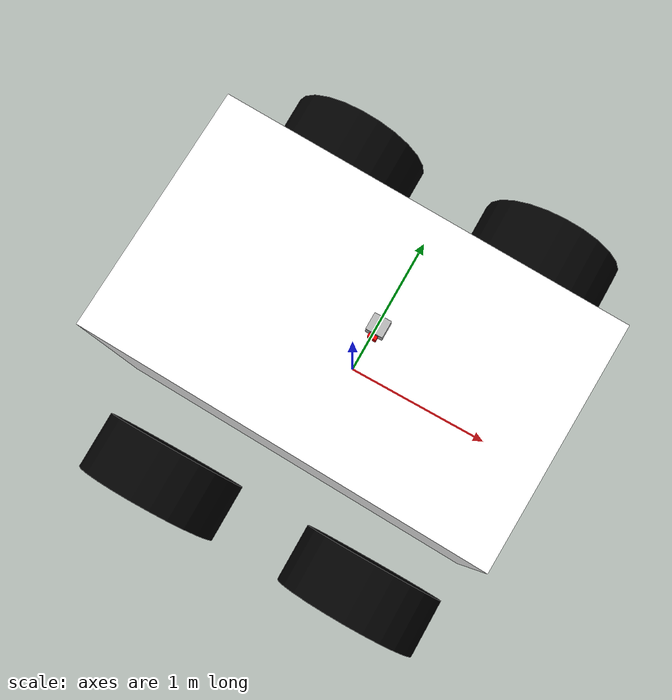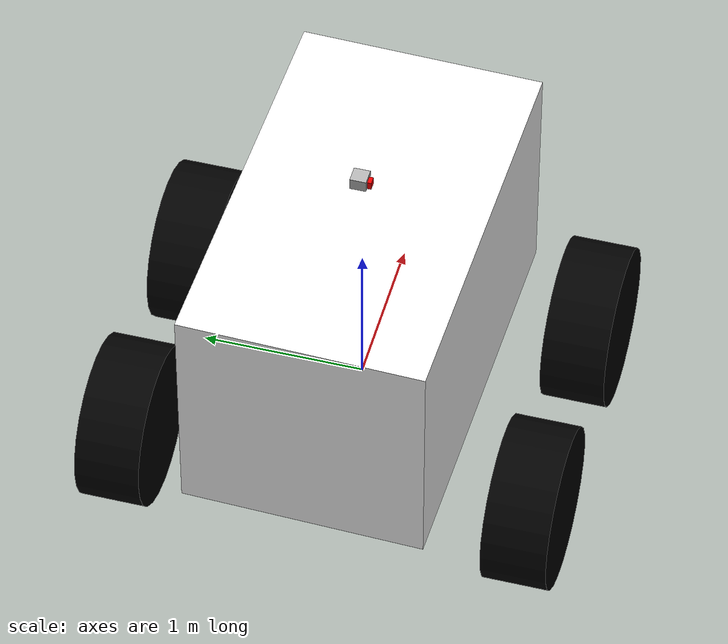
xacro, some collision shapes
<?xml version="1.0"?>

<robot xmlns:xacro="http://www.ros.org/wiki/xacro"
 	xmlns:sensor="http://playerstage.sourceforge.net/gazebo/xmlschema/#sensor"
    	xmlns:controller="http://playerstage.sourceforge.net/gazebo/xmlschema/#controller"
    	xmlns:interface="http://playerstage.sourceforge.net/gazebo/xmlschema/#interface"
	name="robot1_xacro">

	<xacro:property name="length_wheel" value="0.4" />
	<xacro:property name="radius_wheel" value="0.5" />
	<xacro:property name="camera_link" value="0.05" />
	<xacro:macro name="default_inertial" params="mass">  <!--mass how much ?-->
               <inertial>
                       <mass value="${mass}" />
                       <inertia ixx="1.0" ixy="0.0" ixz="0.0"
                                iyy="1.0" iyz="0.0"
                                izz="1.0" />
               </inertial>
	</xacro:macro>

	<link name="base_footprint">
   		<visual>
			<geometry>
      				<box size="0.001 0.001 0.001"/>
     			</geometry>
			<origin rpy="0 0 0" xyz="0 0 0"/>
   		</visual>
		<xacro:default_inertial mass="0.0001"/>
 	</link>
 	<xacro:include filename="$(find robot1_description)/urdf/robot.gazebo" />

	<gazebo reference="base_footprint">
		<material>Gazebo/Green</material>
		<turnGravityOff>false</turnGravityOff>
	</gazebo>

	<joint name="base_footprint_joint" type="fixed">
		<origin xyz="0 0 0" />
		<parent link="base_footprint" />
		<child link="base_link" />
	</joint>

	<link name="base_link">
   		<visual>
			<geometry>
      				<box size="1.5 2.5 1.5"/>
     			</geometry>
			<origin rpy="0 0 1.54" xyz="0 0 0.75"/>  <!--the wheel height? origin be the center of down face-->
			<material name="white">
				<color rgba="1 1 1 1"/>
			</material>
   		</visual>
		<collision>
			<geometry>
       				<box size="1.5 2.5 1.5"/>
			</geometry>
		</collision>
		<xacro:default_inertial mass="10"/> <!--nearly 1000 times-->
 	</link>

 	<link name="wheel_1">
   		<visual>
     			<geometry>
       				<cylinder length="${length_wheel}" radius="${radius_wheel}"/>
     			</geometry>
			<origin rpy="0 0 0" xyz="0 0 0"/>
   			<material name="black">
				<color rgba="0 0 0 1"/>
			</material>
		</visual>
		<collision>
			<geometry>
       				<cylinder length="${length_wheel}" radius="${radius_wheel}"/>
			</geometry>
		</collision>
		<xacro:default_inertial mass="1"/>  <!--nearly 8000 heavier-->
 	</link>

 	<link name="wheel_2">
   		<visual>
     			<geometry>
       				<cylinder length="${length_wheel}" radius="${radius_wheel}"/>
     			</geometry>
			<origin rpy="0 0 0" xyz="0 0 0"/>
   			<material name="black"/>
   		</visual>
		<collision>
			<geometry>
       				<cylinder length="${length_wheel}" radius="${radius_wheel}"/>
			</geometry>
		</collision>
		<xacro:default_inertial mass="1"/>

 	</link>

 	<link name="wheel_3">
   		<visual>
     			<geometry>
       				<cylinder length="${length_wheel}" radius="${radius_wheel}"/>
     			</geometry>

			<origin rpy="0 0 0" xyz="0 0 0"/>
   			<material name="black"/>
   		</visual>
		<collision>
			<geometry>
       				<cylinder length="${length_wheel}" radius="${radius_wheel}"/>
			</geometry>
		</collision>
		<xacro:default_inertial mass="1"/>
 	</link>

 	<link name="wheel_4">
   		<visual>
     			<geometry>
       				<cylinder length="${length_wheel}" radius="${radius_wheel}"/>
     			</geometry>
			<origin rpy="0 0 0" xyz="0 0 0" />
   			<material name="black"/>
   		</visual>
		<collision>
			<geometry>
       				<cylinder length="${length_wheel}" radius="${radius_wheel}"/>
			</geometry>
		</collision>
		<xacro:default_inertial mass="1"/>

 	</link>

 <joint name="base_to_wheel1" type="continuous">
   <parent link="base_link"/>
   <child link="wheel_1"/>
   <origin rpy="-1.5707 0 0" xyz="0.75 1.25 0"/>  <!--what does this mean-->
   <axis xyz="0 0 1" />
 </joint>

 <joint name="base_to_wheel2" type="continuous">
   <axis xyz="0 0 1" />
   <anchor xyz="0 0 0" />
   <limit effort="100" velocity="100" />  <!---a thounsand time's effort-->
   <parent link="base_link"/>
   <child link="wheel_2"/>
   <origin rpy="-1.5707 0 0" xyz="-0.75 1.25 0"/>
</joint>

 <joint name="base_to_wheel3" type="continuous">
   <parent link="base_link"/>
   <axis xyz="0 0 1" />
   <child link="wheel_3"/>
   <origin rpy="-1.5707 0 0" xyz="0.75 -1.25 0"/>
 </joint>

 <joint name="base_to_wheel4" type="continuous">
   <parent link="base_link"/>
   <axis xyz="0 0 1" />
   <child link="wheel_4"/>
   <origin rpy="-1.5707 0 0" xyz="-0.75 -1.25 0"/>
 </joint>
  <!-- Camera joint -->
  <joint name="camera_joint" type="fixed">
    <axis xyz="0 1 0" />
    <origin xyz="0.125 0 1.525" rpy="0 0 0"/>
    <parent link="base_link"/>
    <child link="camera_link"/>
  </joint>

  <!-- Camera -->
  <link name="camera_link">
    <collision>
      <origin xyz="0 0 0" rpy="0 0 0"/>
      <geometry>
	<box size="0.05 0.05 0.05"/>
      </geometry>
    </collision>

    <visual>
      <origin xyz="0 0 0" rpy="0 0 0"/>
      <geometry>
	<box size="0.05 0.05 0.05"/>
      </geometry>
      <material name="red">
	<color rgba="1 0 0 1"/>
      </material>
    </visual>

    <inertial>
      <mass value="1e-5" />
      <origin xyz="0 0 0" rpy="0 0 0"/>
      <inertia ixx="1e-6" ixy="0" ixz="0" iyy="1e-6" iyz="0" izz="1e-6" />
    </inertial>
  </link>

  <!-- Hokuyo joint -->
  <joint name="hokuyo_joint" type="fixed">
    <origin xyz="0.125 0.05 1.525" rpy="0 0 0"/>
    <parent link="base_link"/>
    <axis xyz="0 1 0" />
    <child link="hokuyo_link"/>
  </joint>

  <!-- Hokuyo Laser -->
  <link name="hokuyo_link">
    <collision>
      <origin xyz="0 0 0" rpy="0 0 0"/>
      <geometry>
	<box size="0.1 0.1 0.1"/>
      </geometry>
    </collision>

    <visual>
      <origin xyz="0 0 0" rpy="0 0 0"/>
      <geometry>
        <mesh filename="package://robot1_description/meshes/hokuyo.dae"/>
      </geometry>
    </visual>

    <inertial>
      <mass value="1e-5" />
      <origin xyz="0 0 0" rpy="0 0 0"/>
      <inertia ixx="1e-6" ixy="0" ixz="0" iyy="1e-6" iyz="0" izz="1e-6" />
    </inertial>
  </link>

  <!-- Drive controller -->
<gazebo>
  <plugin name="skid_steer_drive_controller" filename="libgazebo_ros_skid_steer_drive.so">
    <updateRate>100.0</updateRate>
    <robotNamespace></robotNamespace>
    <leftFrontJoint>base_to_wheel1</leftFrontJoint>
    <rightFrontJoint>base_to_wheel3</rightFrontJoint>
    <leftRearJoint>base_to_wheel2</leftRearJoint>
    <rightRearJoint>base_to_wheel4</rightRearJoint>
    <wheelSeparation>4</wheelSeparation>
    <wheelDiameter>1.0</wheelDiameter>
    <commandTopic>cmd_vel</commandTopic>
    <odometryTopic>odom</odometryTopic>
    <robotBaseFrame>base_footprint</robotBaseFrame>
    <odometryFrame>odom</odometryFrame>
    <torque>1</torque>
    <topicName>cmd_vel</topicName>
    <broadcastTF>1</broadcastTF>
  </plugin>
</gazebo>

</robot>
